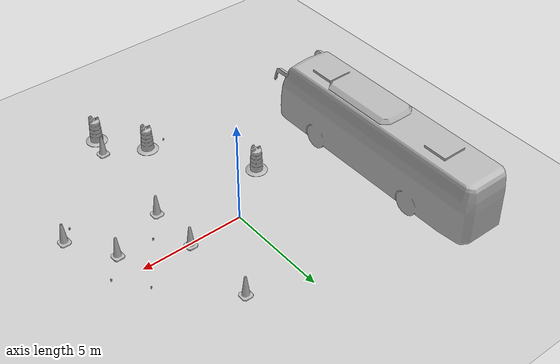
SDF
<sdf version="1.7">
 <world name="default">
  <light name="sun" type="directional">
   <pose>0 0 10 0 -0 0</pose>
   <diffuse>0.8 0.8 0.8 1</diffuse>
   <specular>0.2 0.2 0.2 1</specular>
   <attenuation>
    <range>1000</range>
    <constant>0.9</constant>
    <linear>0.01</linear>
    <quadratic>0.001</quadratic>
   </attenuation>
   <direction>-0.5 0.1 -0.9</direction>
   <spot><inner_angle>0</inner_angle><outer_angle>0</outer_angle><falloff>0</falloff></spot>
  </light>
  <model name="ground_plane">
   <static>1</static>
   <link name="link">
    <collision name="collision">
     <geometry><plane><normal>0 0 1</normal><size>100 100</size></plane></geometry>
     <surface>
      <contact><collide_bitmask>65535</collide_bitmask></contact>
      <friction><ode><mu>100</mu><mu2>50</mu2></ode></friction>
     </surface>
    </collision>
    <visual name="visual">
     <cast_shadows>0</cast_shadows>
     <geometry><plane><normal>0 0 1</normal><size>100 100</size></plane></geometry>
     <material>
      <script><uri>file://media/materials/scripts/gazebo.material</uri><name>Gazebo/Grey</name></script>
     </material>
    </visual>
   </link>
  </model>
  <gravity>0 0 -9.8</gravity>
  <magnetic_field>6e-06 2.3e-05 -4.2e-05</magnetic_field>
  <atmosphere type="adiabatic"/>
  <physics type="ode">
   <max_step_size>0.001</max_step_size>
   <real_time_factor>1</real_time_factor>
   <real_time_update_rate>1000</real_time_update_rate>
  </physics>
  <scene><ambient>0.4 0.4 0.4 1</ambient><background>0.7 0.7 0.7 1</background><shadows>1</shadows></scene>
  <spherical_coordinates>
   <surface_model>EARTH_WGS84</surface_model>
   <latitude_deg>0</latitude_deg>
   <longitude_deg>0</longitude_deg>
   <elevation>0</elevation>
   <heading_deg>0</heading_deg>
  </spherical_coordinates>
  <model name="Construction Cone">
   <link name="link">
    <collision name="collision">
     <geometry>
      <mesh><scale>10 10 10</scale><uri>model://construction_cone/meshes/construction_cone.dae</uri></mesh>
     </geometry>
    </collision>
    <visual name="visual">
     <geometry>
      <mesh><scale>10 10 10</scale><uri>model://construction_cone/meshes/construction_cone.dae</uri></mesh>
     </geometry>
    </visual>
    <inertial>
     <inertia><ixx>1</ixx><ixy>0</ixy><ixz>0</ixz><iyy>1</iyy><iyz>0</iyz><izz>1</izz></inertia>
     <mass>1</mass>
    </inertial>
   </link>
   <pose>2.69059 -2.42932 -0 0 -1e-06 0</pose>
  </model>
  <model name="Construction Cone_0">
   <link name="link">
    <collision name="collision">
     <geometry>
      <mesh><scale>10 10 10</scale><uri>model://construction_cone/meshes/construction_cone.dae</uri></mesh>
     </geometry>
    </collision>
    <visual name="visual">
     <geometry>
      <mesh><scale>10 10 10</scale><uri>model://construction_cone/meshes/construction_cone.dae</uri></mesh>
     </geometry>
    </visual>
    <inertial>
     <inertia><ixx>1</ixx><ixy>0</ixy><ixz>0</ixz><iyy>1</iyy><iyz>0</iyz><izz>1</izz></inertia>
     <mass>1</mass>
    </inertial>
   </link>
   <pose>2.65952 0.090708 -1e-05 -0 -0 -0</pose>
  </model>
  <model name="Construction Cone_1">
   <link name="link">
    <collision name="collision">
     <geometry>
      <mesh><scale>10 10 10</scale><uri>model://construction_cone/meshes/construction_cone.dae</uri></mesh>
     </geometry>
    </collision>
    <visual name="visual">
     <geometry>
      <mesh><scale>10 10 10</scale><uri>model://construction_cone/meshes/construction_cone.dae</uri></mesh>
     </geometry>
    </visual>
    <inertial>
     <inertia><ixx>1</ixx><ixy>0</ixy><ixz>0</ixz><iyy>1</iyy><iyz>0</iyz><izz>1</izz></inertia>
     <mass>1</mass>
    </inertial>
   </link>
   <pose>2.57629 3.79102 -0 0 -1e-06 0</pose>
  </model>
  <model name="bus">
   <static>1</static>
   <link name="link">
    <collision name="collision">
     <geometry><mesh><scale>0.01 0.01 0.01</scale><uri>model://bus/meshes/bus.obj</uri></mesh></geometry>
    </collision>
    <visual name="visual">
     <geometry><mesh><scale>0.01 0.01 0.01</scale><uri>model://bus/meshes/bus.obj</uri></mesh></geometry>
    </visual>
   </link>
   <pose>-6.9893 1.5746 0 0 -0 0</pose>
  </model>
  <model name="Construction Cone_2">
   <link name="link">
    <collision name="collision">
     <geometry>
      <mesh><scale>10 10 10</scale><uri>model://construction_cone/meshes/construction_cone.dae</uri></mesh>
     </geometry>
    </collision>
    <visual name="visual">
     <geometry>
      <mesh><scale>10 10 10</scale><uri>model://construction_cone/meshes/construction_cone.dae</uri></mesh>
     </geometry>
    </visual>
    <inertial>
     <inertia><ixx>1</ixx><ixy>0</ixy><ixz>0</ixz><iyy>1</iyy><iyz>0</iyz><izz>1</izz></inertia>
     <mass>1</mass>
    </inertial>
   </link>
   <pose>5.39353 -1.29982 -0 -0 -0 -0</pose>
  </model>
  <model name="Construction Cone_3">
   <link name="link">
    <collision name="collision">
     <geometry>
      <mesh><scale>10 10 10</scale><uri>model://construction_cone/meshes/construction_cone.dae</uri></mesh>
     </geometry>
    </collision>
    <visual name="visual">
     <geometry>
      <mesh><scale>10 10 10</scale><uri>model://construction_cone/meshes/construction_cone.dae</uri></mesh>
     </geometry>
    </visual>
    <inertial>
     <inertia><ixx>1</ixx><ixy>0</ixy><ixz>0</ixz><iyy>1</iyy><iyz>0</iyz><izz>1</izz></inertia>
     <mass>1</mass>
    </inertial>
   </link>
   <pose>6.71403 -3.42107 -1e-05 -1e-06 0 0</pose>
  </model>
  <model name="coke_can">
   <link name="link">
    <inertial>
     <pose>0 0 0.06 0 -0 0</pose>
     <mass>0.39</mass>
     <inertia>
      <ixx>0.00055575</ixx>
      <ixy>0</ixy>
      <ixz>0</ixz>
      <iyy>0.00055575</iyy>
      <iyz>0</iyz>
      <izz>0.0001755</izz>
     </inertia>
    </inertial>
    <collision name="collision">
     <pose>0.003937 0.004724 -0.18 0 -0 0</pose>
     <geometry><mesh><uri>model://coke_can/meshes/coke_can.dae</uri></mesh></geometry>
     <surface>
      <friction><ode><mu>1</mu><mu2>1</mu2></ode></friction>
      <contact><ode><kp>1e+07</kp><kd>1</kd><min_depth>0.001</min_depth><max_vel>0.1</max_vel></ode></contact>
     </surface>
    </collision>
    <visual name="visual">
     <pose>0.003937 0.004724 -0.18 0 -0 0</pose>
     <geometry><mesh><uri>model://coke_can/meshes/coke_can.dae</uri></mesh></geometry>
    </visual>
   </link>
   <pose>-0.419972 -6.5984 -0.003015 -0.061509 -0.013716 -0.00064</pose>
  </model>
  <model name="coke_can_0">
   <link name="link">
    <inertial>
     <pose>0 0 0.06 0 -0 0</pose>
     <mass>0.39</mass>
     <inertia>
      <ixx>0.00055575</ixx>
      <ixy>0</ixy>
      <ixz>0</ixz>
      <iyy>0.00055575</iyy>
      <iyz>0</iyz>
      <izz>0.0001755</izz>
     </inertia>
    </inertial>
    <collision name="collision">
     <pose>0.003937 0.004724 -0.18 0 -0 0</pose>
     <geometry><mesh><uri>model://coke_can/meshes/coke_can.dae</uri></mesh></geometry>
     <surface>
      <friction><ode><mu>1</mu><mu2>1</mu2></ode></friction>
      <contact><ode><kp>1e+07</kp><kd>1</kd><min_depth>0.001</min_depth><max_vel>0.1</max_vel></ode></contact>
     </surface>
    </collision>
    <visual name="visual">
     <pose>0.003937 0.004724 -0.18 0 -0 0</pose>
     <geometry><mesh><uri>model://coke_can/meshes/coke_can.dae</uri></mesh></geometry>
    </visual>
   </link>
   <pose>3.70047 -1.20888 -0.002958 -0.062969 -0.00992 -0.000617</pose>
  </model>
  <model name="coke_can_1">
   <link name="link">
    <inertial>
     <pose>0 0 0.06 0 -0 0</pose>
     <mass>0.39</mass>
     <inertia>
      <ixx>0.00055575</ixx>
      <ixy>0</ixy>
      <ixz>0</ixz>
      <iyy>0.00055575</iyy>
      <iyz>0</iyz>
      <izz>0.0001755</izz>
     </inertia>
    </inertial>
    <collision name="collision">
     <pose>0.003937 0.004724 -0.18 0 -0 0</pose>
     <geometry><mesh><uri>model://coke_can/meshes/coke_can.dae</uri></mesh></geometry>
     <surface>
      <friction><ode><mu>1</mu><mu2>1</mu2></ode></friction>
      <contact><ode><kp>1e+07</kp><kd>1</kd><min_depth>0.001</min_depth><max_vel>0.1</max_vel></ode></contact>
     </surface>
    </collision>
    <visual name="visual">
     <pose>0.003937 0.004724 -0.18 0 -0 0</pose>
     <geometry><mesh><uri>model://coke_can/meshes/coke_can.dae</uri></mesh></geometry>
    </visual>
   </link>
   <pose>6.33414 -0.284312 -0.002905 -0.06403 -0.006301 -0.000589</pose>
  </model>
  <model name="coke_can_2">
   <link name="link">
    <inertial>
     <pose>0 0 0.06 0 -0 0</pose>
     <mass>0.39</mass>
     <inertia>
      <ixx>0.00055575</ixx>
      <ixy>0</ixy>
      <ixz>0</ixz>
      <iyy>0.00055575</iyy>
      <iyz>0</iyz>
      <izz>0.0001755</izz>
     </inertia>
    </inertial>
    <collision name="collision">
     <pose>0.003937 0.004724 -0.18 0 -0 0</pose>
     <geometry><mesh><uri>model://coke_can/meshes/coke_can.dae</uri></mesh></geometry>
     <surface>
      <friction><ode><mu>1</mu><mu2>1</mu2></ode></friction>
      <contact><ode><kp>1e+07</kp><kd>1</kd><min_depth>0.001</min_depth><max_vel>0.1</max_vel></ode></contact>
     </surface>
    </collision>
    <visual name="visual">
     <pose>0.003937 0.004724 -0.18 0 -0 0</pose>
     <geometry><mesh><uri>model://coke_can/meshes/coke_can.dae</uri></mesh></geometry>
    </visual>
   </link>
   <pose>6.13359 -4.00437 -0.002862 -0.064214 -0.00352 -0.000572</pose>
  </model>
  <model name="coke_can_3">
   <link name="link">
    <inertial>
     <pose>0 0 0.06 0 -0 0</pose>
     <mass>0.39</mass>
     <inertia>
      <ixx>0.00055575</ixx>
      <ixy>0</ixy>
      <ixz>0</ixz>
      <iyy>0.00055575</iyy>
      <iyz>0</iyz>
      <izz>0.0001755</izz>
     </inertia>
    </inertial>
    <collision name="collision">
     <pose>0.003937 0.004724 -0.18 0 -0 0</pose>
     <geometry><mesh><uri>model://coke_can/meshes/coke_can.dae</uri></mesh></geometry>
     <surface>
      <friction><ode><mu>1</mu><mu2>1</mu2></ode></friction>
      <contact><ode><kp>1e+07</kp><kd>1</kd><min_depth>0.001</min_depth><max_vel>0.1</max_vel></ode></contact>
     </surface>
    </collision>
    <visual name="visual">
     <pose>0.003937 0.004724 -0.18 0 -0 0</pose>
     <geometry><mesh><uri>model://coke_can/meshes/coke_can.dae</uri></mesh></geometry>
    </visual>
   </link>
   <pose>5.28787 1.08057 -0.002819 -0.064295 -0.000797 -0.000576</pose>
  </model>
  <model name="Construction Barrel">
   <link name="link">
    <inertial>
     <pose>0 0 0.4 0 -0 0</pose>
     <mass>500</mass>
     <inertia><ixx>51.2096</ixx><iyy>51.2096</iyy><izz>25</izz><ixy>0</ixy><ixz>0</ixz><iyz>0</iyz></inertia>
    </inertial>
    <collision name="collision">
     <geometry><mesh><uri>model://construction_barrel/meshes/construction_barrel.dae</uri></mesh></geometry>
    </collision>
    <visual name="visual">
     <geometry><mesh><uri>model://construction_barrel/meshes/construction_barrel.dae</uri></mesh></geometry>
    </visual>
   </link>
   <pose>0.514442 -6.5085 -0 0 0 -9e-06</pose>
  </model>
  <model name="Construction Barrel_0">
   <link name="link">
    <inertial>
     <pose>0 0 0.4 0 -0 0</pose>
     <mass>500</mass>
     <inertia><ixx>51.2096</ixx><iyy>51.2096</iyy><izz>25</izz><ixy>0</ixy><ixz>0</ixz><iyz>0</iyz></inertia>
    </inertial>
    <collision name="collision">
     <geometry><mesh><uri>model://construction_barrel/meshes/construction_barrel.dae</uri></mesh></geometry>
    </collision>
    <visual name="visual">
     <geometry><mesh><uri>model://construction_barrel/meshes/construction_barrel.dae</uri></mesh></geometry>
    </visual>
   </link>
   <pose>2.05051 -8.57698 -1e-06 3e-06 1e-05 -8e-06</pose>
  </model>
  <model name="Construction Cone_4">
   <link name="link">
    <collision name="collision">
     <geometry>
      <mesh><scale>10 10 10</scale><uri>model://construction_cone/meshes/construction_cone.dae</uri></mesh>
     </geometry>
    </collision>
    <visual name="visual">
     <geometry>
      <mesh><scale>10 10 10</scale><uri>model://construction_cone/meshes/construction_cone.dae</uri></mesh>
     </geometry>
    </visual>
    <inertial>
     <inertia><ixx>1</ixx><ixy>0</ixy><ixz>0</ixz><iyy>1</iyy><iyz>0</iyz><izz>1</izz></inertia>
     <mass>1</mass>
    </inertial>
   </link>
   <pose>2.36044 -7.47149 -1e-05 0 -0 0</pose>
  </model>
  <model name="Construction Barrel_1">
   <link name="link">
    <inertial>
     <pose>0 0 0.4 0 -0 0</pose>
     <mass>500</mass>
     <inertia><ixx>51.2096</ixx><iyy>51.2096</iyy><izz>25</izz><ixy>0</ixy><ixz>0</ixz><iyz>0</iyz></inertia>
    </inertial>
    <collision name="collision">
     <geometry><mesh><uri>model://construction_barrel/meshes/construction_barrel.dae</uri></mesh></geometry>
    </collision>
    <visual name="visual">
     <geometry><mesh><uri>model://construction_barrel/meshes/construction_barrel.dae</uri></mesh></geometry>
    </visual>
   </link>
   <pose>-2.5414 -2.08123 -1e-06 3e-06 -2e-06 -4e-06</pose>
  </model>
 </world>
</sdf>
